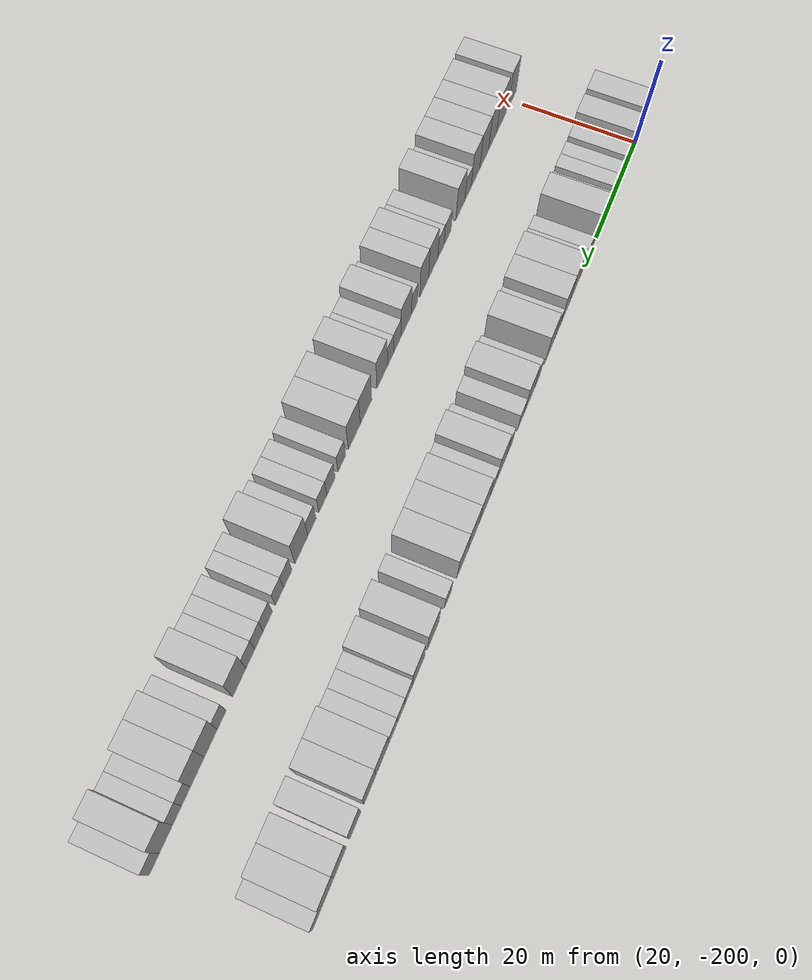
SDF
<sdf version="1.6">
 <world name="default">
  <model name="building_1">
   <static>1</static>
   <pose>25.0000 -201.9486 0 0.000000 0.000000 0.000000</pose>
   <link name="link">
    <pose>0 0 4.50 0 0 0</pose>
    <collision name="collision"><geometry><box><size>10.0000 4.1028 9.0000</size></box></geometry></collision>
    <visual name="visual">
     <cast_shadows>0</cast_shadows>
     <geometry><box><size>10.0000 4.1028 9.0000</size></box></geometry>
     <material>
      <script>
       <uri>model://HANNAS_wall/materials/scripts</uri>
       <uri>model://HANNAS_wall/materials/textures</uri>
       <name>vrc/HANNAS_wall</name>
      </script>
     </material>
    </visual>
   </link>
  </model>
  <model name="building_2">
   <static>1</static>
   <pose>25.0000 -196.9260 0 0.000000 0.000000 0.000000</pose>
   <link name="link">
    <pose>0 0 4.50 0 0 0</pose>
    <collision name="collision"><geometry><box><size>10.0000 3.9423 9.0000</size></box></geometry></collision>
    <visual name="visual">
     <cast_shadows>0</cast_shadows>
     <geometry><box><size>10.0000 3.9423 9.0000</size></box></geometry>
     <material>
      <script>
       <uri>model://HANNAS_wall/materials/scripts</uri>
       <uri>model://HANNAS_wall/materials/textures</uri>
       <name>vrc/HANNAS_wall</name>
      </script>
     </material>
    </visual>
   </link>
  </model>
  <model name="building_3">
   <static>1</static>
   <pose>25.0000 -193.6295 0 0.000000 0.000000 0.000000</pose>
   <link name="link">
    <pose>0 0 3.00 0 0 0</pose>
    <collision name="collision"><geometry><box><size>10.0000 2.6506 6.0000</size></box></geometry></collision>
    <visual name="visual">
     <cast_shadows>0</cast_shadows>
     <geometry><box><size>10.0000 2.6506 6.0000</size></box></geometry>
     <material>
      <script>
       <uri>model://HANNAS_wall/materials/scripts</uri>
       <uri>model://HANNAS_wall/materials/textures</uri>
       <name>vrc/HANNAS_wall</name>
      </script>
     </material>
    </visual>
   </link>
  </model>
  <model name="building_4">
   <static>1</static>
   <pose>25.0000 -190.0197 0 0.000000 0.000000 0.000000</pose>
   <link name="link">
    <pose>0 0 3.00 0 0 0</pose>
    <collision name="collision"><geometry><box><size>10.0000 2.5690 6.0000</size></box></geometry></collision>
    <visual name="visual">
     <cast_shadows>0</cast_shadows>
     <geometry><box><size>10.0000 2.5690 6.0000</size></box></geometry>
     <material>
      <script>
       <uri>model://HANNAS_wall/materials/scripts</uri>
       <uri>model://HANNAS_wall/materials/textures</uri>
       <name>vrc/HANNAS_wall</name>
      </script>
     </material>
    </visual>
   </link>
  </model>
  <model name="building_5">
   <static>1</static>
   <pose>25.0000 -187.4292 0 0.000000 0.000000 0.000000</pose>
   <link name="link">
    <pose>0 0 3.00 0 0 0</pose>
    <collision name="collision"><geometry><box><size>10.0000 2.6120 6.0000</size></box></geometry></collision>
    <visual name="visual">
     <cast_shadows>0</cast_shadows>
     <geometry><box><size>10.0000 2.6120 6.0000</size></box></geometry>
     <material>
      <script>
       <uri>model://HANNAS_wall/materials/scripts</uri>
       <uri>model://HANNAS_wall/materials/textures</uri>
       <name>vrc/HANNAS_wall</name>
      </script>
     </material>
    </visual>
   </link>
  </model>
  <model name="building_6">
   <static>1</static>
   <pose>25.0000 -183.9190 0 0.000000 0.000000 0.000000</pose>
   <link name="link">
    <pose>0 0 3.00 0 0 0</pose>
    <collision name="collision"><geometry><box><size>10.0000 2.4084 6.0000</size></box></geometry></collision>
    <visual name="visual">
     <cast_shadows>0</cast_shadows>
     <geometry><box><size>10.0000 2.4084 6.0000</size></box></geometry>
     <material>
      <script>
       <uri>model://HANNAS_wall/materials/scripts</uri>
       <uri>model://HANNAS_wall/materials/textures</uri>
       <name>vrc/HANNAS_wall</name>
      </script>
     </material>
    </visual>
   </link>
  </model>
  <model name="building_7">
   <static>1</static>
   <pose>25.0000 -180.5216 0 0.000000 0.000000 0.000000</pose>
   <link name="link">
    <pose>0 0 4.50 0 0 0</pose>
    <collision name="collision"><geometry><box><size>10.0000 4.3864 9.0000</size></box></geometry></collision>
    <visual name="visual">
     <cast_shadows>0</cast_shadows>
     <geometry><box><size>10.0000 4.3864 9.0000</size></box></geometry>
     <material>
      <script>
       <uri>model://HANNAS_wall/materials/scripts</uri>
       <uri>model://HANNAS_wall/materials/textures</uri>
       <name>vrc/HANNAS_wall</name>
      </script>
     </material>
    </visual>
   </link>
  </model>
  <model name="building_8">
   <static>1</static>
   <pose>25.0000 -175.0357 0 0.000000 0.000000 0.000000</pose>
   <link name="link">
    <pose>0 0 3.00 0 0 0</pose>
    <collision name="collision"><geometry><box><size>10.0000 2.5853 6.0000</size></box></geometry></collision>
    <visual name="visual">
     <cast_shadows>0</cast_shadows>
     <geometry><box><size>10.0000 2.5853 6.0000</size></box></geometry>
     <material>
      <script>
       <uri>model://HANNAS_wall/materials/scripts</uri>
       <uri>model://HANNAS_wall/materials/textures</uri>
       <name>vrc/HANNAS_wall</name>
      </script>
     </material>
    </visual>
   </link>
  </model>
  <model name="building_9">
   <static>1</static>
   <pose>25.0000 -172.4799 0 0.000000 0.000000 0.000000</pose>
   <link name="link">
    <pose>0 0 3.00 0 0 0</pose>
    <collision name="collision"><geometry><box><size>10.0000 2.5263 6.0000</size></box></geometry></collision>
    <visual name="visual">
     <cast_shadows>0</cast_shadows>
     <geometry><box><size>10.0000 2.5263 6.0000</size></box></geometry>
     <material>
      <script>
       <uri>model://HANNAS_wall/materials/scripts</uri>
       <uri>model://HANNAS_wall/materials/textures</uri>
       <name>vrc/HANNAS_wall</name>
      </script>
     </material>
    </visual>
   </link>
  </model>
  <model name="building_10">
   <static>1</static>
   <pose>25.0000 -169.0227 0 0.000000 0.000000 0.000000</pose>
   <link name="link">
    <pose>0 0 4.50 0 0 0</pose>
    <collision name="collision"><geometry><box><size>10.0000 4.3881 9.0000</size></box></geometry></collision>
    <visual name="visual">
     <cast_shadows>0</cast_shadows>
     <geometry><box><size>10.0000 4.3881 9.0000</size></box></geometry>
     <material>
      <script>
       <uri>model://HANNAS_wall/materials/scripts</uri>
       <uri>model://HANNAS_wall/materials/textures</uri>
       <name>vrc/HANNAS_wall</name>
      </script>
     </material>
    </visual>
   </link>
  </model>
  <model name="building_11">
   <static>1</static>
   <pose>25.0000 -164.6957 0 0.000000 0.000000 0.000000</pose>
   <link name="link">
    <pose>0 0 4.50 0 0 0</pose>
    <collision name="collision"><geometry><box><size>10.0000 4.2658 9.0000</size></box></geometry></collision>
    <visual name="visual">
     <cast_shadows>0</cast_shadows>
     <geometry><box><size>10.0000 4.2658 9.0000</size></box></geometry>
     <material>
      <script>
       <uri>model://HANNAS_wall/materials/scripts</uri>
       <uri>model://HANNAS_wall/materials/textures</uri>
       <name>vrc/HANNAS_wall</name>
      </script>
     </material>
    </visual>
   </link>
  </model>
  <model name="building_12">
   <static>1</static>
   <pose>25.0000 -161.3127 0 0.000000 0.000000 0.000000</pose>
   <link name="link">
    <pose>0 0 3.00 0 0 0</pose>
    <collision name="collision"><geometry><box><size>10.0000 2.5003 6.0000</size></box></geometry></collision>
    <visual name="visual">
     <cast_shadows>0</cast_shadows>
     <geometry><box><size>10.0000 2.5003 6.0000</size></box></geometry>
     <material>
      <script>
       <uri>model://HANNAS_wall/materials/scripts</uri>
       <uri>model://HANNAS_wall/materials/textures</uri>
       <name>vrc/HANNAS_wall</name>
      </script>
     </material>
    </visual>
   </link>
  </model>
  <model name="building_13">
   <static>1</static>
   <pose>25.0000 -157.8440 0 0.000000 0.000000 0.000000</pose>
   <link name="link">
    <pose>0 0 4.50 0 0 0</pose>
    <collision name="collision"><geometry><box><size>10.0000 4.4371 9.0000</size></box></geometry></collision>
    <visual name="visual">
     <cast_shadows>0</cast_shadows>
     <geometry><box><size>10.0000 4.4371 9.0000</size></box></geometry>
     <material>
      <script>
       <uri>model://HANNAS_wall/materials/scripts</uri>
       <uri>model://HANNAS_wall/materials/textures</uri>
       <name>vrc/HANNAS_wall</name>
      </script>
     </material>
    </visual>
   </link>
  </model>
  <model name="building_14">
   <static>1</static>
   <pose>25.0000 -152.3269 0 0.000000 0.000000 0.000000</pose>
   <link name="link">
    <pose>0 0 3.00 0 0 0</pose>
    <collision name="collision"><geometry><box><size>10.0000 2.5972 6.0000</size></box></geometry></collision>
    <visual name="visual">
     <cast_shadows>0</cast_shadows>
     <geometry><box><size>10.0000 2.5972 6.0000</size></box></geometry>
     <material>
      <script>
       <uri>model://HANNAS_wall/materials/scripts</uri>
       <uri>model://HANNAS_wall/materials/textures</uri>
       <name>vrc/HANNAS_wall</name>
      </script>
     </material>
    </visual>
   </link>
  </model>
  <model name="building_15">
   <static>1</static>
   <pose>25.0000 -148.8110 0 0.000000 0.000000 0.000000</pose>
   <link name="link">
    <pose>0 0 4.50 0 0 0</pose>
    <collision name="collision"><geometry><box><size>10.0000 4.4345 9.0000</size></box></geometry></collision>
    <visual name="visual">
     <cast_shadows>0</cast_shadows>
     <geometry><box><size>10.0000 4.4345 9.0000</size></box></geometry>
     <material>
      <script>
       <uri>model://HANNAS_wall/materials/scripts</uri>
       <uri>model://HANNAS_wall/materials/textures</uri>
       <name>vrc/HANNAS_wall</name>
      </script>
     </material>
    </visual>
   </link>
  </model>
  <model name="building_16">
   <static>1</static>
   <pose>25.0000 -145.1542 0 0.000000 0.000000 0.000000</pose>
   <link name="link">
    <pose>0 0 3.00 0 0 0</pose>
    <collision name="collision"><geometry><box><size>10.0000 2.8792 6.0000</size></box></geometry></collision>
    <visual name="visual">
     <cast_shadows>0</cast_shadows>
     <geometry><box><size>10.0000 2.8792 6.0000</size></box></geometry>
     <material>
      <script>
       <uri>model://HANNAS_wall/materials/scripts</uri>
       <uri>model://HANNAS_wall/materials/textures</uri>
       <name>vrc/HANNAS_wall</name>
      </script>
     </material>
    </visual>
   </link>
  </model>
  <model name="building_17">
   <static>1</static>
   <pose>25.0000 -140.5001 0 0.000000 0.000000 0.000000</pose>
   <link name="link">
    <pose>0 0 3.00 0 0 0</pose>
    <collision name="collision"><geometry><box><size>10.0000 2.4290 6.0000</size></box></geometry></collision>
    <visual name="visual">
     <cast_shadows>0</cast_shadows>
     <geometry><box><size>10.0000 2.4290 6.0000</size></box></geometry>
     <material>
      <script>
       <uri>model://HANNAS_wall/materials/scripts</uri>
       <uri>model://HANNAS_wall/materials/textures</uri>
       <name>vrc/HANNAS_wall</name>
      </script>
     </material>
    </visual>
   </link>
  </model>
  <model name="building_18">
   <static>1</static>
   <pose>25.0000 -137.2405 0 0.000000 0.000000 0.000000</pose>
   <link name="link">
    <pose>0 0 4.50 0 0 0</pose>
    <collision name="collision"><geometry><box><size>10.0000 4.0901 9.0000</size></box></geometry></collision>
    <visual name="visual">
     <cast_shadows>0</cast_shadows>
     <geometry><box><size>10.0000 4.0901 9.0000</size></box></geometry>
     <material>
      <script>
       <uri>model://HANNAS_wall/materials/scripts</uri>
       <uri>model://HANNAS_wall/materials/textures</uri>
       <name>vrc/HANNAS_wall</name>
      </script>
     </material>
    </visual>
   </link>
  </model>
  <model name="building_19">
   <static>1</static>
   <pose>25.0000 -133.7111 0 0.000000 0.000000 0.000000</pose>
   <link name="link">
    <pose>0 0 3.00 0 0 0</pose>
    <collision name="collision"><geometry><box><size>10.0000 2.9687 6.0000</size></box></geometry></collision>
    <visual name="visual">
     <cast_shadows>0</cast_shadows>
     <geometry><box><size>10.0000 2.9687 6.0000</size></box></geometry>
     <material>
      <script>
       <uri>model://HANNAS_wall/materials/scripts</uri>
       <uri>model://HANNAS_wall/materials/textures</uri>
       <name>vrc/HANNAS_wall</name>
      </script>
     </material>
    </visual>
   </link>
  </model>
  <model name="building_20">
   <static>1</static>
   <pose>25.0000 -130.1012 0 0.000000 0.000000 0.000000</pose>
   <link name="link">
    <pose>0 0 4.50 0 0 0</pose>
    <collision name="collision"><geometry><box><size>10.0000 4.2512 9.0000</size></box></geometry></collision>
    <visual name="visual">
     <cast_shadows>0</cast_shadows>
     <geometry><box><size>10.0000 4.2512 9.0000</size></box></geometry>
     <material>
      <script>
       <uri>model://HANNAS_wall/materials/scripts</uri>
       <uri>model://HANNAS_wall/materials/textures</uri>
       <name>vrc/HANNAS_wall</name>
      </script>
     </material>
    </visual>
   </link>
  </model>
  <model name="building_21">
   <static>1</static>
   <pose>25.0000 -125.7690 0 0.000000 0.000000 0.000000</pose>
   <link name="link">
    <pose>0 0 4.50 0 0 0</pose>
    <collision name="collision"><geometry><box><size>10.0000 4.4133 9.0000</size></box></geometry></collision>
    <visual name="visual">
     <cast_shadows>0</cast_shadows>
     <geometry><box><size>10.0000 4.4133 9.0000</size></box></geometry>
     <material>
      <script>
       <uri>model://HANNAS_wall/materials/scripts</uri>
       <uri>model://HANNAS_wall/materials/textures</uri>
       <name>vrc/HANNAS_wall</name>
      </script>
     </material>
    </visual>
   </link>
  </model>
  <model name="building_22">
   <static>1</static>
   <pose>25.0000 -121.4568 0 0.000000 0.000000 0.000000</pose>
   <link name="link">
    <pose>0 0 4.50 0 0 0</pose>
    <collision name="collision"><geometry><box><size>10.0000 4.2110 9.0000</size></box></geometry></collision>
    <visual name="visual">
     <cast_shadows>0</cast_shadows>
     <geometry><box><size>10.0000 4.2110 9.0000</size></box></geometry>
     <material>
      <script>
       <uri>model://HANNAS_wall/materials/scripts</uri>
       <uri>model://HANNAS_wall/materials/textures</uri>
       <name>vrc/HANNAS_wall</name>
      </script>
     </material>
    </visual>
   </link>
  </model>
  <model name="building_23">
   <static>1</static>
   <pose>25.0000 -115.9978 0 0.000000 0.000000 0.000000</pose>
   <link name="link">
    <pose>0 0 3.00 0 0 0</pose>
    <collision name="collision"><geometry><box><size>10.0000 2.7069 6.0000</size></box></geometry></collision>
    <visual name="visual">
     <cast_shadows>0</cast_shadows>
     <geometry><box><size>10.0000 2.7069 6.0000</size></box></geometry>
     <material>
      <script>
       <uri>model://HANNAS_wall/materials/scripts</uri>
       <uri>model://HANNAS_wall/materials/textures</uri>
       <name>vrc/HANNAS_wall</name>
      </script>
     </material>
    </visual>
   </link>
  </model>
  <model name="building_24">
   <static>1</static>
   <pose>25.0000 -110.5085 0 0.000000 0.000000 0.000000</pose>
   <link name="link">
    <pose>0 0 4.50 0 0 0</pose>
    <collision name="collision"><geometry><box><size>10.0000 4.2718 9.0000</size></box></geometry></collision>
    <visual name="visual">
     <cast_shadows>0</cast_shadows>
     <geometry><box><size>10.0000 4.2718 9.0000</size></box></geometry>
     <material>
      <script>
       <uri>model://HANNAS_wall/materials/scripts</uri>
       <uri>model://HANNAS_wall/materials/textures</uri>
       <name>vrc/HANNAS_wall</name>
      </script>
     </material>
    </visual>
   </link>
  </model>
  <model name="building_25">
   <static>1</static>
   <pose>25.0000 -105.1688 0 0.000000 0.000000 0.000000</pose>
   <link name="link">
    <pose>0 0 4.50 0 0 0</pose>
    <collision name="collision"><geometry><box><size>10.0000 4.4077 9.0000</size></box></geometry></collision>
    <visual name="visual">
     <cast_shadows>0</cast_shadows>
     <geometry><box><size>10.0000 4.4077 9.0000</size></box></geometry>
     <material>
      <script>
       <uri>model://HANNAS_wall/materials/scripts</uri>
       <uri>model://HANNAS_wall/materials/textures</uri>
       <name>vrc/HANNAS_wall</name>
      </script>
     </material>
    </visual>
   </link>
  </model>
  <model name="building_26">
   <static>1</static>
   <pose>25.0000 -101.6888 0 0.000000 0.000000 0.000000</pose>
   <link name="link">
    <pose>0 0 3.00 0 0 0</pose>
    <collision name="collision"><geometry><box><size>10.0000 2.5521 6.0000</size></box></geometry></collision>
    <visual name="visual">
     <cast_shadows>0</cast_shadows>
     <geometry><box><size>10.0000 2.5521 6.0000</size></box></geometry>
     <material>
      <script>
       <uri>model://HANNAS_wall/materials/scripts</uri>
       <uri>model://HANNAS_wall/materials/textures</uri>
       <name>vrc/HANNAS_wall</name>
      </script>
     </material>
    </visual>
   </link>
  </model>
  <model name="building_27">
   <static>1</static>
   <pose>25.0000 -99.0381 0 0.000000 0.000000 0.000000</pose>
   <link name="link">
    <pose>0 0 3.00 0 0 0</pose>
    <collision name="collision"><geometry><box><size>10.0000 2.7493 6.0000</size></box></geometry></collision>
    <visual name="visual">
     <cast_shadows>0</cast_shadows>
     <geometry><box><size>10.0000 2.7493 6.0000</size></box></geometry>
     <material>
      <script>
       <uri>model://HANNAS_wall/materials/scripts</uri>
       <uri>model://HANNAS_wall/materials/textures</uri>
       <name>vrc/HANNAS_wall</name>
      </script>
     </material>
    </visual>
   </link>
  </model>
  <model name="building_28">
   <static>1</static>
   <pose>25.0000 -96.2116 0 0.000000 0.000000 0.000000</pose>
   <link name="link">
    <pose>0 0 3.00 0 0 0</pose>
    <collision name="collision"><geometry><box><size>10.0000 2.9036 6.0000</size></box></geometry></collision>
    <visual name="visual">
     <cast_shadows>0</cast_shadows>
     <geometry><box><size>10.0000 2.9036 6.0000</size></box></geometry>
     <material>
      <script>
       <uri>model://HANNAS_wall/materials/scripts</uri>
       <uri>model://HANNAS_wall/materials/textures</uri>
       <name>vrc/HANNAS_wall</name>
      </script>
     </material>
    </visual>
   </link>
  </model>
  <model name="building_29">
   <static>1</static>
   <pose>25.0000 -92.5882 0 0.000000 0.000000 0.000000</pose>
   <link name="link">
    <pose>0 0 4.50 0 0 0</pose>
    <collision name="collision"><geometry><box><size>10.0000 4.3431 9.0000</size></box></geometry></collision>
    <visual name="visual">
     <cast_shadows>0</cast_shadows>
     <geometry><box><size>10.0000 4.3431 9.0000</size></box></geometry>
     <material>
      <script>
       <uri>model://HANNAS_wall/materials/scripts</uri>
       <uri>model://HANNAS_wall/materials/textures</uri>
       <name>vrc/HANNAS_wall</name>
      </script>
     </material>
    </visual>
   </link>
  </model>
  <model name="building_30">
   <static>1</static>
   <pose>25.0000 -88.4454 0 0.000000 0.000000 0.000000</pose>
   <link name="link">
    <pose>0 0 4.50 0 0 0</pose>
    <collision name="collision"><geometry><box><size>10.0000 3.9424 9.0000</size></box></geometry></collision>
    <visual name="visual">
     <cast_shadows>0</cast_shadows>
     <geometry><box><size>10.0000 3.9424 9.0000</size></box></geometry>
     <material>
      <script>
       <uri>model://HANNAS_wall/materials/scripts</uri>
       <uri>model://HANNAS_wall/materials/textures</uri>
       <name>vrc/HANNAS_wall</name>
      </script>
     </material>
    </visual>
   </link>
  </model>
  <model name="building_31">
   <static>1</static>
   <pose>25.0000 -83.6475 0 0.000000 0.000000 0.000000</pose>
   <link name="link">
    <pose>0 0 4.50 0 0 0</pose>
    <collision name="collision"><geometry><box><size>10.0000 3.6534 9.0000</size></box></geometry></collision>
    <visual name="visual">
     <cast_shadows>0</cast_shadows>
     <geometry><box><size>10.0000 3.6534 9.0000</size></box></geometry>
     <material>
      <script>
       <uri>model://HANNAS_wall/materials/scripts</uri>
       <uri>model://HANNAS_wall/materials/textures</uri>
       <name>vrc/HANNAS_wall</name>
      </script>
     </material>
    </visual>
   </link>
  </model>
  <model name="building_32">
   <static>1</static>
   <pose>25.0000 -78.8852 0 0.000000 0.000000 0.000000</pose>
   <link name="link">
    <pose>0 0 4.50 0 0 0</pose>
    <collision name="collision"><geometry><box><size>10.0000 3.8712 9.0000</size></box></geometry></collision>
    <visual name="visual">
     <cast_shadows>0</cast_shadows>
     <geometry><box><size>10.0000 3.8712 9.0000</size></box></geometry>
     <material>
      <script>
       <uri>model://HANNAS_wall/materials/scripts</uri>
       <uri>model://HANNAS_wall/materials/textures</uri>
       <name>vrc/HANNAS_wall</name>
      </script>
     </material>
    </visual>
   </link>
  </model>
  <model name="building_33">
   <static>1</static>
   <pose>25.0000 -74.8442 0 0.000000 0.000000 0.000000</pose>
   <link name="link">
    <pose>0 0 4.50 0 0 0</pose>
    <collision name="collision"><geometry><box><size>10.0000 4.2107 9.0000</size></box></geometry></collision>
    <visual name="visual">
     <cast_shadows>0</cast_shadows>
     <geometry><box><size>10.0000 4.2107 9.0000</size></box></geometry>
     <material>
      <script>
       <uri>model://HANNAS_wall/materials/scripts</uri>
       <uri>model://HANNAS_wall/materials/textures</uri>
       <name>vrc/HANNAS_wall</name>
      </script>
     </material>
    </visual>
   </link>
  </model>
  <model name="building_34">
   <static>1</static>
   <pose>25.0000 -71.4549 0 0.000000 0.000000 0.000000</pose>
   <link name="link">
    <pose>0 0 3.00 0 0 0</pose>
    <collision name="collision"><geometry><box><size>10.0000 2.5680 6.0000</size></box></geometry></collision>
    <visual name="visual">
     <cast_shadows>0</cast_shadows>
     <geometry><box><size>10.0000 2.5680 6.0000</size></box></geometry>
     <material>
      <script>
       <uri>model://HANNAS_wall/materials/scripts</uri>
       <uri>model://HANNAS_wall/materials/textures</uri>
       <name>vrc/HANNAS_wall</name>
      </script>
     </material>
    </visual>
   </link>
  </model>
  <model name="building_104">
   <static>1</static>
   <pose>47.0000 -200.0877 0 0.000000 0.000000 0.000000</pose>
   <link name="link">
    <pose>0 0 4.50 0 0 0</pose>
    <collision name="collision"><geometry><box><size>10.0000 3.8246 9.0000</size></box></geometry></collision>
    <visual name="visual">
     <cast_shadows>0</cast_shadows>
     <geometry><box><size>10.0000 3.8246 9.0000</size></box></geometry>
     <material>
      <script>
       <uri>model://HANNAS_wall/materials/scripts</uri>
       <uri>model://HANNAS_wall/materials/textures</uri>
       <name>vrc/HANNAS_wall</name>
      </script>
     </material>
    </visual>
   </link>
  </model>
  <model name="building_105">
   <static>1</static>
   <pose>47.0000 -194.9362 0 0.000000 0.000000 0.000000</pose>
   <link name="link">
    <pose>0 0 4.50 0 0 0</pose>
    <collision name="collision"><geometry><box><size>10.0000 4.4785 9.0000</size></box></geometry></collision>
    <visual name="visual">
     <cast_shadows>0</cast_shadows>
     <geometry><box><size>10.0000 4.4785 9.0000</size></box></geometry>
     <material>
      <script>
       <uri>model://HANNAS_wall/materials/scripts</uri>
       <uri>model://HANNAS_wall/materials/textures</uri>
       <name>vrc/HANNAS_wall</name>
      </script>
     </material>
    </visual>
   </link>
  </model>
  <model name="building_106">
   <static>1</static>
   <pose>47.0000 -190.8038 0 0.000000 0.000000 0.000000</pose>
   <link name="link">
    <pose>0 0 4.50 0 0 0</pose>
    <collision name="collision"><geometry><box><size>10.0000 3.7862 9.0000</size></box></geometry></collision>
    <visual name="visual">
     <cast_shadows>0</cast_shadows>
     <geometry><box><size>10.0000 3.7862 9.0000</size></box></geometry>
     <material>
      <script>
       <uri>model://HANNAS_wall/materials/scripts</uri>
       <uri>model://HANNAS_wall/materials/textures</uri>
       <name>vrc/HANNAS_wall</name>
      </script>
     </material>
    </visual>
   </link>
  </model>
  <model name="building_107">
   <static>1</static>
   <pose>47.0000 -186.8962 0 0.000000 0.000000 0.000000</pose>
   <link name="link">
    <pose>0 0 4.50 0 0 0</pose>
    <collision name="collision"><geometry><box><size>10.0000 4.0291 9.0000</size></box></geometry></collision>
    <visual name="visual">
     <cast_shadows>0</cast_shadows>
     <geometry><box><size>10.0000 4.0291 9.0000</size></box></geometry>
     <material>
      <script>
       <uri>model://HANNAS_wall/materials/scripts</uri>
       <uri>model://HANNAS_wall/materials/textures</uri>
       <name>vrc/HANNAS_wall</name>
      </script>
     </material>
    </visual>
   </link>
  </model>
  <model name="building_108">
   <static>1</static>
   <pose>47.0000 -182.9345 0 0.000000 0.000000 0.000000</pose>
   <link name="link">
    <pose>0 0 4.50 0 0 0</pose>
    <collision name="collision"><geometry><box><size>10.0000 3.8942 9.0000</size></box></geometry></collision>
    <visual name="visual">
     <cast_shadows>0</cast_shadows>
     <geometry><box><size>10.0000 3.8942 9.0000</size></box></geometry>
     <material>
      <script>
       <uri>model://HANNAS_wall/materials/scripts</uri>
       <uri>model://HANNAS_wall/materials/textures</uri>
       <name>vrc/HANNAS_wall</name>
      </script>
     </material>
    </visual>
   </link>
  </model>
  <model name="building_109">
   <static>1</static>
   <pose>47.0000 -179.5643 0 0.000000 0.000000 0.000000</pose>
   <link name="link">
    <pose>0 0 3.00 0 0 0</pose>
    <collision name="collision"><geometry><box><size>10.0000 2.8462 6.0000</size></box></geometry></collision>
    <visual name="visual">
     <cast_shadows>0</cast_shadows>
     <geometry><box><size>10.0000 2.8462 6.0000</size></box></geometry>
     <material>
      <script>
       <uri>model://HANNAS_wall/materials/scripts</uri>
       <uri>model://HANNAS_wall/materials/textures</uri>
       <name>vrc/HANNAS_wall</name>
      </script>
     </material>
    </visual>
   </link>
  </model>
  <model name="building_110">
   <static>1</static>
   <pose>47.0000 -176.1574 0 0.000000 0.000000 0.000000</pose>
   <link name="link">
    <pose>0 0 4.50 0 0 0</pose>
    <collision name="collision"><geometry><box><size>10.0000 3.9675 9.0000</size></box></geometry></collision>
    <visual name="visual">
     <cast_shadows>0</cast_shadows>
     <geometry><box><size>10.0000 3.9675 9.0000</size></box></geometry>
     <material>
      <script>
       <uri>model://HANNAS_wall/materials/scripts</uri>
       <uri>model://HANNAS_wall/materials/textures</uri>
       <name>vrc/HANNAS_wall</name>
      </script>
     </material>
    </visual>
   </link>
  </model>
  <model name="building_111">
   <static>1</static>
   <pose>47.0000 -170.6746 0 0.000000 0.000000 0.000000</pose>
   <link name="link">
    <pose>0 0 3.00 0 0 0</pose>
    <collision name="collision"><geometry><box><size>10.0000 2.9981 6.0000</size></box></geometry></collision>
    <visual name="visual">
     <cast_shadows>0</cast_shadows>
     <geometry><box><size>10.0000 2.9981 6.0000</size></box></geometry>
     <material>
      <script>
       <uri>model://HANNAS_wall/materials/scripts</uri>
       <uri>model://HANNAS_wall/materials/textures</uri>
       <name>vrc/HANNAS_wall</name>
      </script>
     </material>
    </visual>
   </link>
  </model>
  <model name="building_112">
   <static>1</static>
   <pose>47.0000 -167.8338 0 0.000000 0.000000 0.000000</pose>
   <link name="link">
    <pose>0 0 3.00 0 0 0</pose>
    <collision name="collision"><geometry><box><size>10.0000 2.6836 6.0000</size></box></geometry></collision>
    <visual name="visual">
     <cast_shadows>0</cast_shadows>
     <geometry><box><size>10.0000 2.6836 6.0000</size></box></geometry>
     <material>
      <script>
       <uri>model://HANNAS_wall/materials/scripts</uri>
       <uri>model://HANNAS_wall/materials/textures</uri>
       <name>vrc/HANNAS_wall</name>
      </script>
     </material>
    </visual>
   </link>
  </model>
  <model name="building_113">
   <static>1</static>
   <pose>47.0000 -164.5679 0 0.000000 0.000000 0.000000</pose>
   <link name="link">
    <pose>0 0 4.50 0 0 0</pose>
    <collision name="collision"><geometry><box><size>10.0000 3.8482 9.0000</size></box></geometry></collision>
    <visual name="visual">
     <cast_shadows>0</cast_shadows>
     <geometry><box><size>10.0000 3.8482 9.0000</size></box></geometry>
     <material>
      <script>
       <uri>model://HANNAS_wall/materials/scripts</uri>
       <uri>model://HANNAS_wall/materials/textures</uri>
       <name>vrc/HANNAS_wall</name>
      </script>
     </material>
    </visual>
   </link>
  </model>
  <model name="building_114">
   <static>1</static>
   <pose>47.0000 -160.8390 0 0.000000 0.000000 0.000000</pose>
   <link name="link">
    <pose>0 0 4.50 0 0 0</pose>
    <collision name="collision"><geometry><box><size>10.0000 3.6096 9.0000</size></box></geometry></collision>
    <visual name="visual">
     <cast_shadows>0</cast_shadows>
     <geometry><box><size>10.0000 3.6096 9.0000</size></box></geometry>
     <material>
      <script>
       <uri>model://HANNAS_wall/materials/scripts</uri>
       <uri>model://HANNAS_wall/materials/textures</uri>
       <name>vrc/HANNAS_wall</name>
      </script>
     </material>
    </visual>
   </link>
  </model>
  <model name="building_115">
   <static>1</static>
   <pose>47.0000 -156.8341 0 0.000000 0.000000 0.000000</pose>
   <link name="link">
    <pose>0 0 3.00 0 0 0</pose>
    <collision name="collision"><geometry><box><size>10.0000 2.4002 6.0000</size></box></geometry></collision>
    <visual name="visual">
     <cast_shadows>0</cast_shadows>
     <geometry><box><size>10.0000 2.4002 6.0000</size></box></geometry>
     <material>
      <script>
       <uri>model://HANNAS_wall/materials/scripts</uri>
       <uri>model://HANNAS_wall/materials/textures</uri>
       <name>vrc/HANNAS_wall</name>
      </script>
     </material>
    </visual>
   </link>
  </model>
  <model name="building_116">
   <static>1</static>
   <pose>47.0000 -153.5319 0 0.000000 0.000000 0.000000</pose>
   <link name="link">
    <pose>0 0 4.50 0 0 0</pose>
    <collision name="collision"><geometry><box><size>10.0000 4.2043 9.0000</size></box></geometry></collision>
    <visual name="visual">
     <cast_shadows>0</cast_shadows>
     <geometry><box><size>10.0000 4.2043 9.0000</size></box></geometry>
     <material>
      <script>
       <uri>model://HANNAS_wall/materials/scripts</uri>
       <uri>model://HANNAS_wall/materials/textures</uri>
       <name>vrc/HANNAS_wall</name>
      </script>
     </material>
    </visual>
   </link>
  </model>
  <model name="building_117">
   <static>1</static>
   <pose>47.0000 -149.9758 0 0.000000 0.000000 0.000000</pose>
   <link name="link">
    <pose>0 0 3.00 0 0 0</pose>
    <collision name="collision"><geometry><box><size>10.0000 2.9078 6.0000</size></box></geometry></collision>
    <visual name="visual">
     <cast_shadows>0</cast_shadows>
     <geometry><box><size>10.0000 2.9078 6.0000</size></box></geometry>
     <material>
      <script>
       <uri>model://HANNAS_wall/materials/scripts</uri>
       <uri>model://HANNAS_wall/materials/textures</uri>
       <name>vrc/HANNAS_wall</name>
      </script>
     </material>
    </visual>
   </link>
  </model>
  <model name="building_118">
   <static>1</static>
   <pose>47.0000 -147.3164 0 0.000000 0.000000 0.000000</pose>
   <link name="link">
    <pose>0 0 3.00 0 0 0</pose>
    <collision name="collision"><geometry><box><size>10.0000 2.4111 6.0000</size></box></geometry></collision>
    <visual name="visual">
     <cast_shadows>0</cast_shadows>
     <geometry><box><size>10.0000 2.4111 6.0000</size></box></geometry>
     <material>
      <script>
       <uri>model://HANNAS_wall/materials/scripts</uri>
       <uri>model://HANNAS_wall/materials/textures</uri>
       <name>vrc/HANNAS_wall</name>
      </script>
     </material>
    </visual>
   </link>
  </model>
  <model name="building_119">
   <static>1</static>
   <pose>47.0000 -144.0491 0 0.000000 0.000000 0.000000</pose>
   <link name="link">
    <pose>0 0 4.50 0 0 0</pose>
    <collision name="collision"><geometry><box><size>10.0000 4.1235 9.0000</size></box></geometry></collision>
    <visual name="visual">
     <cast_shadows>0</cast_shadows>
     <geometry><box><size>10.0000 4.1235 9.0000</size></box></geometry>
     <material>
      <script>
       <uri>model://HANNAS_wall/materials/scripts</uri>
       <uri>model://HANNAS_wall/materials/textures</uri>
       <name>vrc/HANNAS_wall</name>
      </script>
     </material>
    </visual>
   </link>
  </model>
  <model name="building_120">
   <static>1</static>
   <pose>47.0000 -137.8268 0 0.000000 0.000000 0.000000</pose>
   <link name="link">
    <pose>0 0 4.50 0 0 0</pose>
    <collision name="collision"><geometry><box><size>10.0000 4.3212 9.0000</size></box></geometry></collision>
    <visual name="visual">
     <cast_shadows>0</cast_shadows>
     <geometry><box><size>10.0000 4.3212 9.0000</size></box></geometry>
     <material>
      <script>
       <uri>model://HANNAS_wall/materials/scripts</uri>
       <uri>model://HANNAS_wall/materials/textures</uri>
       <name>vrc/HANNAS_wall</name>
      </script>
     </material>
    </visual>
   </link>
  </model>
  <model name="building_121">
   <static>1</static>
   <pose>47.0000 -133.4558 0 0.000000 0.000000 0.000000</pose>
   <link name="link">
    <pose>0 0 4.50 0 0 0</pose>
    <collision name="collision"><geometry><box><size>10.0000 4.4208 9.0000</size></box></geometry></collision>
    <visual name="visual">
     <cast_shadows>0</cast_shadows>
     <geometry><box><size>10.0000 4.4208 9.0000</size></box></geometry>
     <material>
      <script>
       <uri>model://HANNAS_wall/materials/scripts</uri>
       <uri>model://HANNAS_wall/materials/textures</uri>
       <name>vrc/HANNAS_wall</name>
      </script>
     </material>
    </visual>
   </link>
  </model>
  <model name="building_122">
   <static>1</static>
   <pose>47.0000 -128.8492 0 0.000000 0.000000 0.000000</pose>
   <link name="link">
    <pose>0 0 3.00 0 0 0</pose>
    <collision name="collision"><geometry><box><size>10.0000 2.7925 6.0000</size></box></geometry></collision>
    <visual name="visual">
     <cast_shadows>0</cast_shadows>
     <geometry><box><size>10.0000 2.7925 6.0000</size></box></geometry>
     <material>
      <script>
       <uri>model://HANNAS_wall/materials/scripts</uri>
       <uri>model://HANNAS_wall/materials/textures</uri>
       <name>vrc/HANNAS_wall</name>
      </script>
     </material>
    </visual>
   </link>
  </model>
  <model name="building_123">
   <static>1</static>
   <pose>47.0000 -124.9934 0 0.000000 0.000000 0.000000</pose>
   <link name="link">
    <pose>0 0 3.00 0 0 0</pose>
    <collision name="collision"><geometry><box><size>10.0000 2.9191 6.0000</size></box></geometry></collision>
    <visual name="visual">
     <cast_shadows>0</cast_shadows>
     <geometry><box><size>10.0000 2.9191 6.0000</size></box></geometry>
     <material>
      <script>
       <uri>model://HANNAS_wall/materials/scripts</uri>
       <uri>model://HANNAS_wall/materials/textures</uri>
       <name>vrc/HANNAS_wall</name>
      </script>
     </material>
    </visual>
   </link>
  </model>
  <model name="building_124">
   <static>1</static>
   <pose>47.0000 -122.1116 0 0.000000 0.000000 0.000000</pose>
   <link name="link">
    <pose>0 0 3.00 0 0 0</pose>
    <collision name="collision"><geometry><box><size>10.0000 2.8445 6.0000</size></box></geometry></collision>
    <visual name="visual">
     <cast_shadows>0</cast_shadows>
     <geometry><box><size>10.0000 2.8445 6.0000</size></box></geometry>
     <material>
      <script>
       <uri>model://HANNAS_wall/materials/scripts</uri>
       <uri>model://HANNAS_wall/materials/textures</uri>
       <name>vrc/HANNAS_wall</name>
      </script>
     </material>
    </visual>
   </link>
  </model>
  <model name="building_125">
   <static>1</static>
   <pose>47.0000 -118.2677 0 0.000000 0.000000 0.000000</pose>
   <link name="link">
    <pose>0 0 3.00 0 0 0</pose>
    <collision name="collision"><geometry><box><size>10.0000 2.8432 6.0000</size></box></geometry></collision>
    <visual name="visual">
     <cast_shadows>0</cast_shadows>
     <geometry><box><size>10.0000 2.8432 6.0000</size></box></geometry>
     <material>
      <script>
       <uri>model://HANNAS_wall/materials/scripts</uri>
       <uri>model://HANNAS_wall/materials/textures</uri>
       <name>vrc/HANNAS_wall</name>
      </script>
     </material>
    </visual>
   </link>
  </model>
  <model name="building_126">
   <static>1</static>
   <pose>47.0000 -114.6387 0 0.000000 0.000000 0.000000</pose>
   <link name="link">
    <pose>0 0 4.50 0 0 0</pose>
    <collision name="collision"><geometry><box><size>10.0000 4.4148 9.0000</size></box></geometry></collision>
    <visual name="visual">
     <cast_shadows>0</cast_shadows>
     <geometry><box><size>10.0000 4.4148 9.0000</size></box></geometry>
     <material>
      <script>
       <uri>model://HANNAS_wall/materials/scripts</uri>
       <uri>model://HANNAS_wall/materials/textures</uri>
       <name>vrc/HANNAS_wall</name>
      </script>
     </material>
    </visual>
   </link>
  </model>
  <model name="building_127">
   <static>1</static>
   <pose>47.0000 -110.0194 0 0.000000 0.000000 0.000000</pose>
   <link name="link">
    <pose>0 0 3.00 0 0 0</pose>
    <collision name="collision"><geometry><box><size>10.0000 2.8237 6.0000</size></box></geometry></collision>
    <visual name="visual">
     <cast_shadows>0</cast_shadows>
     <geometry><box><size>10.0000 2.8237 6.0000</size></box></geometry>
     <material>
      <script>
       <uri>model://HANNAS_wall/materials/scripts</uri>
       <uri>model://HANNAS_wall/materials/textures</uri>
       <name>vrc/HANNAS_wall</name>
      </script>
     </material>
    </visual>
   </link>
  </model>
  <model name="building_128">
   <static>1</static>
   <pose>47.0000 -107.2648 0 0.000000 0.000000 0.000000</pose>
   <link name="link">
    <pose>0 0 3.00 0 0 0</pose>
    <collision name="collision"><geometry><box><size>10.0000 2.6856 6.0000</size></box></geometry></collision>
    <visual name="visual">
     <cast_shadows>0</cast_shadows>
     <geometry><box><size>10.0000 2.6856 6.0000</size></box></geometry>
     <material>
      <script>
       <uri>model://HANNAS_wall/materials/scripts</uri>
       <uri>model://HANNAS_wall/materials/textures</uri>
       <name>vrc/HANNAS_wall</name>
      </script>
     </material>
    </visual>
   </link>
  </model>
  <model name="building_129">
   <static>1</static>
   <pose>47.0000 -103.4384 0 0.000000 0.000000 0.000000</pose>
   <link name="link">
    <pose>0 0 3.00 0 0 0</pose>
    <collision name="collision"><geometry><box><size>10.0000 2.9673 6.0000</size></box></geometry></collision>
    <visual name="visual">
     <cast_shadows>0</cast_shadows>
     <geometry><box><size>10.0000 2.9673 6.0000</size></box></geometry>
     <material>
      <script>
       <uri>model://HANNAS_wall/materials/scripts</uri>
       <uri>model://HANNAS_wall/materials/textures</uri>
       <name>vrc/HANNAS_wall</name>
      </script>
     </material>
    </visual>
   </link>
  </model>
  <model name="building_130">
   <static>1</static>
   <pose>47.0000 -100.5976 0 0.000000 0.000000 0.000000</pose>
   <link name="link">
    <pose>0 0 3.00 0 0 0</pose>
    <collision name="collision"><geometry><box><size>10.0000 2.7143 6.0000</size></box></geometry></collision>
    <visual name="visual">
     <cast_shadows>0</cast_shadows>
     <geometry><box><size>10.0000 2.7143 6.0000</size></box></geometry>
     <material>
      <script>
       <uri>model://HANNAS_wall/materials/scripts</uri>
       <uri>model://HANNAS_wall/materials/textures</uri>
       <name>vrc/HANNAS_wall</name>
      </script>
     </material>
    </visual>
   </link>
  </model>
  <model name="building_131">
   <static>1</static>
   <pose>47.0000 -97.8295 0 0.000000 0.000000 0.000000</pose>
   <link name="link">
    <pose>0 0 3.00 0 0 0</pose>
    <collision name="collision"><geometry><box><size>10.0000 2.8219 6.0000</size></box></geometry></collision>
    <visual name="visual">
     <cast_shadows>0</cast_shadows>
     <geometry><box><size>10.0000 2.8219 6.0000</size></box></geometry>
     <material>
      <script>
       <uri>model://HANNAS_wall/materials/scripts</uri>
       <uri>model://HANNAS_wall/materials/textures</uri>
       <name>vrc/HANNAS_wall</name>
      </script>
     </material>
    </visual>
   </link>
  </model>
  <model name="building_132">
   <static>1</static>
   <pose>47.0000 -94.3407 0 0.000000 0.000000 0.000000</pose>
   <link name="link">
    <pose>0 0 4.50 0 0 0</pose>
    <collision name="collision"><geometry><box><size>10.0000 4.1559 9.0000</size></box></geometry></collision>
    <visual name="visual">
     <cast_shadows>0</cast_shadows>
     <geometry><box><size>10.0000 4.1559 9.0000</size></box></geometry>
     <material>
      <script>
       <uri>model://HANNAS_wall/materials/scripts</uri>
       <uri>model://HANNAS_wall/materials/textures</uri>
       <name>vrc/HANNAS_wall</name>
      </script>
     </material>
    </visual>
   </link>
  </model>
  <model name="building_133">
   <static>1</static>
   <pose>47.0000 -88.9294 0 0.000000 0.000000 0.000000</pose>
   <link name="link">
    <pose>0 0 3.00 0 0 0</pose>
    <collision name="collision"><geometry><box><size>10.0000 2.6667 6.0000</size></box></geometry></collision>
    <visual name="visual">
     <cast_shadows>0</cast_shadows>
     <geometry><box><size>10.0000 2.6667 6.0000</size></box></geometry>
     <material>
      <script>
       <uri>model://HANNAS_wall/materials/scripts</uri>
       <uri>model://HANNAS_wall/materials/textures</uri>
       <name>vrc/HANNAS_wall</name>
      </script>
     </material>
    </visual>
   </link>
  </model>
  <model name="building_134">
   <static>1</static>
   <pose>47.0000 -85.6318 0 0.000000 0.000000 0.000000</pose>
   <link name="link">
    <pose>0 0 4.50 0 0 0</pose>
    <collision name="collision"><geometry><box><size>10.0000 3.9284 9.0000</size></box></geometry></collision>
    <visual name="visual">
     <cast_shadows>0</cast_shadows>
     <geometry><box><size>10.0000 3.9284 9.0000</size></box></geometry>
     <material>
      <script>
       <uri>model://HANNAS_wall/materials/scripts</uri>
       <uri>model://HANNAS_wall/materials/textures</uri>
       <name>vrc/HANNAS_wall</name>
      </script>
     </material>
    </visual>
   </link>
  </model>
  <model name="building_135">
   <static>1</static>
   <pose>47.0000 -81.6467 0 0.000000 0.000000 0.000000</pose>
   <link name="link">
    <pose>0 0 4.50 0 0 0</pose>
    <collision name="collision"><geometry><box><size>10.0000 4.0419 9.0000</size></box></geometry></collision>
    <visual name="visual">
     <cast_shadows>0</cast_shadows>
     <geometry><box><size>10.0000 4.0419 9.0000</size></box></geometry>
     <material>
      <script>
       <uri>model://HANNAS_wall/materials/scripts</uri>
       <uri>model://HANNAS_wall/materials/textures</uri>
       <name>vrc/HANNAS_wall</name>
      </script>
     </material>
    </visual>
   </link>
  </model>
  <model name="building_136">
   <static>1</static>
   <pose>47.0000 -78.3332 0 0.000000 0.000000 0.000000</pose>
   <link name="link">
    <pose>0 0 3.00 0 0 0</pose>
    <collision name="collision"><geometry><box><size>10.0000 2.5850 6.0000</size></box></geometry></collision>
    <visual name="visual">
     <cast_shadows>0</cast_shadows>
     <geometry><box><size>10.0000 2.5850 6.0000</size></box></geometry>
     <material>
      <script>
       <uri>model://HANNAS_wall/materials/scripts</uri>
       <uri>model://HANNAS_wall/materials/textures</uri>
       <name>vrc/HANNAS_wall</name>
      </script>
     </material>
    </visual>
   </link>
  </model>
  <model name="building_137">
   <static>1</static>
   <pose>47.0000 -75.7600 0 0.000000 0.000000 0.000000</pose>
   <link name="link">
    <pose>0 0 3.00 0 0 0</pose>
    <collision name="collision"><geometry><box><size>10.0000 2.5613 6.0000</size></box></geometry></collision>
    <visual name="visual">
     <cast_shadows>0</cast_shadows>
     <geometry><box><size>10.0000 2.5613 6.0000</size></box></geometry>
     <material>
      <script>
       <uri>model://HANNAS_wall/materials/scripts</uri>
       <uri>model://HANNAS_wall/materials/textures</uri>
       <name>vrc/HANNAS_wall</name>
      </script>
     </material>
    </visual>
   </link>
  </model>
  <model name="building_138">
   <static>1</static>
   <pose>47.0000 -72.5826 0 0.000000 0.000000 0.000000</pose>
   <link name="link">
    <pose>0 0 4.50 0 0 0</pose>
    <collision name="collision"><geometry><box><size>10.0000 3.7935 9.0000</size></box></geometry></collision>
    <visual name="visual">
     <cast_shadows>0</cast_shadows>
     <geometry><box><size>10.0000 3.7935 9.0000</size></box></geometry>
     <material>
      <script>
       <uri>model://HANNAS_wall/materials/scripts</uri>
       <uri>model://HANNAS_wall/materials/textures</uri>
       <name>vrc/HANNAS_wall</name>
      </script>
     </material>
    </visual>
   </link>
  </model>
  <model name="building_139">
   <static>1</static>
   <pose>47.0000 -69.2665 0 0.000000 0.000000 0.000000</pose>
   <link name="link">
    <pose>0 0 3.00 0 0 0</pose>
    <collision name="collision"><geometry><box><size>10.0000 2.8387 6.0000</size></box></geometry></collision>
    <visual name="visual">
     <cast_shadows>0</cast_shadows>
     <geometry><box><size>10.0000 2.8387 6.0000</size></box></geometry>
     <material>
      <script>
       <uri>model://HANNAS_wall/materials/scripts</uri>
       <uri>model://HANNAS_wall/materials/textures</uri>
       <name>vrc/HANNAS_wall</name>
      </script>
     </material>
    </visual>
   </link>
  </model>
 </world>
</sdf>
